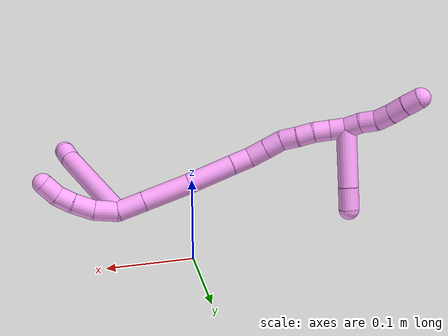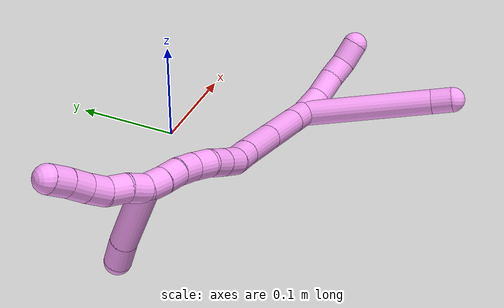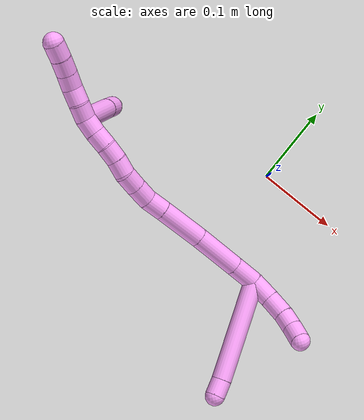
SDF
<sdf version="1.7">
 <world name="default">
  <model name="4">
   <static>0</static>
   <link name="4">
    <collision name="collision-cylinder-e_1_2_8">
     <pose>-0.028159 -0.034059 -0.046978 2.51429 -0.451811 -1.2329</pose>
     <geometry><cylinder><radius>0.0125</radius><length>0.128994</length></cylinder></geometry>
     <surface>
      <friction><ode><mu>1.16</mu><mu2>1.16</mu2><slip1>0</slip1><slip2>0</slip2></ode></friction>
      <contact><ode><kp>1e+06</kp><kd>1</kd><max_vel>0</max_vel><min_depth>0.001</min_depth></ode></contact>
     </surface>
    </collision>
    <visual name="visual-cylinder-e_1_2_8">
     <pose>-0.028159 -0.034059 -0.046978 2.51429 -0.451811 -1.2329</pose>
     <geometry><cylinder><radius>0.0125</radius><length>0.128994</length></cylinder></geometry>
     <material><ambient>1 0.65098 0.996078 1</ambient></material>
    </visual>
    <collision name="collision-cylinder-e_2_8_6">
     <pose>-0.061371 -0.074171 -0.100894 2.4242 -0.501884 -1.19946</pose>
     <geometry><cylinder><radius>0.0125</radius><length>0.021006</length></cylinder></geometry>
     <surface>
      <friction><ode><mu>1.16</mu><mu2>1.16</mu2><slip1>0</slip1><slip2>0</slip2></ode></friction>
      <contact><ode><kp>1e+06</kp><kd>1</kd><max_vel>0</max_vel><min_depth>0.001</min_depth></ode></contact>
     </surface>
    </collision>
    <visual name="visual-cylinder-e_2_8_6">
     <pose>-0.061371 -0.074171 -0.100894 2.4242 -0.501884 -1.19946</pose>
     <geometry><cylinder><radius>0.0125</radius><length>0.021006</length></cylinder></geometry>
     <material><ambient>1 0.65098 0.996078 1</ambient></material>
    </visual>
    <collision name="collision-cylinder-e_1_2_9">
     <pose>0.007852 -0.003247 -0.011945 2.8762 0.565316 2.27999</pose>
     <geometry><cylinder><radius>0.0125</radius><length>0.029318</length></cylinder></geometry>
     <surface>
      <friction><ode><mu>1.16</mu><mu2>1.16</mu2><slip1>0</slip1><slip2>0</slip2></ode></friction>
      <contact><ode><kp>1e+06</kp><kd>1</kd><max_vel>0</max_vel><min_depth>0.001</min_depth></ode></contact>
     </surface>
    </collision>
    <visual name="visual-cylinder-e_1_2_9">
     <pose>0.007852 -0.003247 -0.011945 2.8762 0.565316 2.27999</pose>
     <geometry><cylinder><radius>0.0125</radius><length>0.029318</length></cylinder></geometry>
     <material><ambient>1 0.65098 0.996078 1</ambient></material>
    </visual>
    <collision name="collision-cylinder-e_2_9_10">
     <pose>0.023029 -0.012934 -0.033235 2.53817 0.573076 1.51612</pose>
     <geometry><cylinder><radius>0.0125</radius><length>0.027015</length></cylinder></geometry>
     <surface>
      <friction><ode><mu>1.16</mu><mu2>1.16</mu2><slip1>0</slip1><slip2>0</slip2></ode></friction>
      <contact><ode><kp>1e+06</kp><kd>1</kd><max_vel>0</max_vel><min_depth>0.001</min_depth></ode></contact>
     </surface>
    </collision>
    <visual name="visual-cylinder-e_2_9_10">
     <pose>0.023029 -0.012934 -0.033235 2.53817 0.573076 1.51612</pose>
     <geometry><cylinder><radius>0.0125</radius><length>0.027015</length></cylinder></geometry>
     <material><ambient>1 0.65098 0.996078 1</ambient></material>
    </visual>
    <collision name="collision-cylinder-e_3_10_11">
     <pose>0.034805 -0.025261 -0.049753 2.45434 0.447328 1.13253</pose>
     <geometry><cylinder><radius>0.0125</radius><length>0.020584</length></cylinder></geometry>
     <surface>
      <friction><ode><mu>1.16</mu><mu2>1.16</mu2><slip1>0</slip1><slip2>0</slip2></ode></friction>
      <contact><ode><kp>1e+06</kp><kd>1</kd><max_vel>0</max_vel><min_depth>0.001</min_depth></ode></contact>
     </surface>
    </collision>
    <visual name="visual-cylinder-e_3_10_11">
     <pose>0.034805 -0.025261 -0.049753 2.45434 0.447328 1.13253</pose>
     <geometry><cylinder><radius>0.0125</radius><length>0.020584</length></cylinder></geometry>
     <material><ambient>1 0.65098 0.996078 1</ambient></material>
    </visual>
    <collision name="collision-cylinder-e_4_11_5">
     <pose>0.043818 -0.040141 -0.062541 2.129 0.406278 0.711333</pose>
     <geometry><cylinder><radius>0.0125</radius><length>0.023084</length></cylinder></geometry>
     <surface>
      <friction><ode><mu>1.16</mu><mu2>1.16</mu2><slip1>0</slip1><slip2>0</slip2></ode></friction>
      <contact><ode><kp>1e+06</kp><kd>1</kd><max_vel>0</max_vel><min_depth>0.001</min_depth></ode></contact>
     </surface>
    </collision>
    <visual name="visual-cylinder-e_4_11_5">
     <pose>0.043818 -0.040141 -0.062541 2.129 0.406278 0.711333</pose>
     <geometry><cylinder><radius>0.0125</radius><length>0.023084</length></cylinder></geometry>
     <material><ambient>1 0.65098 0.996078 1</ambient></material>
    </visual>
    <collision name="collision-cylinder-e_1_2_12">
     <pose>-0.008548 -0.003449 0.01408 0.240191 -0.53276 -0.065833</pose>
     <geometry><cylinder><radius>0.0125</radius><length>0.033658</length></cylinder></geometry>
     <surface>
      <friction><ode><mu>1.16</mu><mu2>1.16</mu2><slip1>0</slip1><slip2>0</slip2></ode></friction>
      <contact><ode><kp>1e+06</kp><kd>1</kd><max_vel>0</max_vel><min_depth>0.001</min_depth></ode></contact>
     </surface>
    </collision>
    <visual name="visual-cylinder-e_1_2_12">
     <pose>-0.008548 -0.003449 0.01408 0.240191 -0.53276 -0.065833</pose>
     <geometry><cylinder><radius>0.0125</radius><length>0.033658</length></cylinder></geometry>
     <material><ambient>1 0.65098 0.996078 1</ambient></material>
    </visual>
    <collision name="collision-cylinder-e_2_12_13">
     <pose>-0.032213 -0.012956 0.052853 0.240624 -0.536449 -0.066431</pose>
     <geometry><cylinder><radius>0.0125</radius><length>0.05916</length></cylinder></geometry>
     <surface>
      <friction><ode><mu>1.16</mu><mu2>1.16</mu2><slip1>0</slip1><slip2>0</slip2></ode></friction>
      <contact><ode><kp>1e+06</kp><kd>1</kd><max_vel>0</max_vel><min_depth>0.001</min_depth></ode></contact>
     </surface>
    </collision>
    <visual name="visual-cylinder-e_2_12_13">
     <pose>-0.032213 -0.012956 0.052853 0.240624 -0.536449 -0.066431</pose>
     <geometry><cylinder><radius>0.0125</radius><length>0.05916</length></cylinder></geometry>
     <material><ambient>1 0.65098 0.996078 1</ambient></material>
    </visual>
    <collision name="collision-cylinder-e_3_13_14">
     <pose>-0.062334 -0.02598 0.101193 0.286446 -0.546726 -0.080824</pose>
     <geometry><cylinder><radius>0.0125</radius><length>0.057716</length></cylinder></geometry>
     <surface>
      <friction><ode><mu>1.16</mu><mu2>1.16</mu2><slip1>0</slip1><slip2>0</slip2></ode></friction>
      <contact><ode><kp>1e+06</kp><kd>1</kd><max_vel>0</max_vel><min_depth>0.001</min_depth></ode></contact>
     </surface>
    </collision>
    <visual name="visual-cylinder-e_3_13_14">
     <pose>-0.062334 -0.02598 0.101193 0.286446 -0.546726 -0.080824</pose>
     <geometry><cylinder><radius>0.0125</radius><length>0.057716</length></cylinder></geometry>
     <material><ambient>1 0.65098 0.996078 1</ambient></material>
    </visual>
    <collision name="collision-cylinder-e_4_14_15">
     <pose>-0.083843 -0.035685 0.13452 0.275769 -0.573983 -0.081864</pose>
     <geometry><cylinder><radius>0.0125</radius><length>0.023961</length></cylinder></geometry>
     <surface>
      <friction><ode><mu>1.16</mu><mu2>1.16</mu2><slip1>0</slip1><slip2>0</slip2></ode></friction>
      <contact><ode><kp>1e+06</kp><kd>1</kd><max_vel>0</max_vel><min_depth>0.001</min_depth></ode></contact>
     </surface>
    </collision>
    <visual name="visual-cylinder-e_4_14_15">
     <pose>-0.083843 -0.035685 0.13452 0.275769 -0.573983 -0.081864</pose>
     <geometry><cylinder><radius>0.0125</radius><length>0.023961</length></cylinder></geometry>
     <material><ambient>1 0.65098 0.996078 1</ambient></material>
    </visual>
    <collision name="collision-cylinder-e_5_15_16">
     <pose>-0.09392 -0.042205 0.15464 0.34753 -0.311238 -0.055065</pose>
     <geometry><cylinder><radius>0.0125</radius><length>0.023326</length></cylinder></geometry>
     <surface>
      <friction><ode><mu>1.16</mu><mu2>1.16</mu2><slip1>0</slip1><slip2>0</slip2></ode></friction>
      <contact><ode><kp>1e+06</kp><kd>1</kd><max_vel>0</max_vel><min_depth>0.001</min_depth></ode></contact>
     </surface>
    </collision>
    <visual name="visual-cylinder-e_5_15_16">
     <pose>-0.09392 -0.042205 0.15464 0.34753 -0.311238 -0.055065</pose>
     <geometry><cylinder><radius>0.0125</radius><length>0.023326</length></cylinder></geometry>
     <material><ambient>1 0.65098 0.996078 1</ambient></material>
    </visual>
    <collision name="collision-cylinder-e_6_16_17">
     <pose>-0.100495 -0.049712 0.175003 0.359083 -0.276091 -0.050419</pose>
     <geometry><cylinder><radius>0.0125</radius><length>0.022035</length></cylinder></geometry>
     <surface>
      <friction><ode><mu>1.16</mu><mu2>1.16</mu2><slip1>0</slip1><slip2>0</slip2></ode></friction>
      <contact><ode><kp>1e+06</kp><kd>1</kd><max_vel>0</max_vel><min_depth>0.001</min_depth></ode></contact>
     </surface>
    </collision>
    <visual name="visual-cylinder-e_6_16_17">
     <pose>-0.100495 -0.049712 0.175003 0.359083 -0.276091 -0.050419</pose>
     <geometry><cylinder><radius>0.0125</radius><length>0.022035</length></cylinder></geometry>
     <material><ambient>1 0.65098 0.996078 1</ambient></material>
    </visual>
    <collision name="collision-cylinder-e_7_17_18">
     <pose>-0.105581 -0.054102 0.194734 0.067672 -0.208778 -0.007093</pose>
     <geometry><cylinder><radius>0.0125</radius><length>0.020095</length></cylinder></geometry>
     <surface>
      <friction><ode><mu>1.16</mu><mu2>1.16</mu2><slip1>0</slip1><slip2>0</slip2></ode></friction>
      <contact><ode><kp>1e+06</kp><kd>1</kd><max_vel>0</max_vel><min_depth>0.001</min_depth></ode></contact>
     </surface>
    </collision>
    <visual name="visual-cylinder-e_7_17_18">
     <pose>-0.105581 -0.054102 0.194734 0.067672 -0.208778 -0.007093</pose>
     <geometry><cylinder><radius>0.0125</radius><length>0.020095</length></cylinder></geometry>
     <material><ambient>1 0.65098 0.996078 1</ambient></material>
    </visual>
    <collision name="collision-cylinder-e_8_18_19">
     <pose>-0.110869 -0.055872 0.213963 0.116836 -0.325874 -0.019228</pose>
     <geometry><cylinder><radius>0.0125</radius><length>0.020027</length></cylinder></geometry>
     <surface>
      <friction><ode><mu>1.16</mu><mu2>1.16</mu2><slip1>0</slip1><slip2>0</slip2></ode></friction>
      <contact><ode><kp>1e+06</kp><kd>1</kd><max_vel>0</max_vel><min_depth>0.001</min_depth></ode></contact>
     </surface>
    </collision>
    <visual name="visual-cylinder-e_8_18_19">
     <pose>-0.110869 -0.055872 0.213963 0.116836 -0.325874 -0.019228</pose>
     <geometry><cylinder><radius>0.0125</radius><length>0.020027</length></cylinder></geometry>
     <material><ambient>1 0.65098 0.996078 1</ambient></material>
    </visual>
    <collision name="collision-cylinder-e_9_19_20">
     <pose>-0.118205 -0.056854 0.232494 -0.013577 -0.425644 0.002934</pose>
     <geometry><cylinder><radius>0.0125</radius><length>0.020005</length></cylinder></geometry>
     <surface>
      <friction><ode><mu>1.16</mu><mu2>1.16</mu2><slip1>0</slip1><slip2>0</slip2></ode></friction>
      <contact><ode><kp>1e+06</kp><kd>1</kd><max_vel>0</max_vel><min_depth>0.001</min_depth></ode></contact>
     </surface>
    </collision>
    <visual name="visual-cylinder-e_9_19_20">
     <pose>-0.118205 -0.056854 0.232494 -0.013577 -0.425644 0.002934</pose>
     <geometry><cylinder><radius>0.0125</radius><length>0.020005</length></cylinder></geometry>
     <material><ambient>1 0.65098 0.996078 1</ambient></material>
    </visual>
    <collision name="collision-cylinder-e_10_20_1">
     <pose>-0.125634 -0.056489 0.251049 -0.025601 -0.335895 0.004341</pose>
     <geometry><cylinder><radius>0.0125</radius><length>0.020016</length></cylinder></geometry>
     <surface>
      <friction><ode><mu>1.16</mu><mu2>1.16</mu2><slip1>0</slip1><slip2>0</slip2></ode></friction>
      <contact><ode><kp>1e+06</kp><kd>1</kd><max_vel>0</max_vel><min_depth>0.001</min_depth></ode></contact>
     </surface>
    </collision>
    <visual name="visual-cylinder-e_10_20_1">
     <pose>-0.125634 -0.056489 0.251049 -0.025601 -0.335895 0.004341</pose>
     <geometry><cylinder><radius>0.0125</radius><length>0.020016</length></cylinder></geometry>
     <material><ambient>1 0.65098 0.996078 1</ambient></material>
    </visual>
    <collision name="collision-cylinder-e_1_1_21">
     <pose>-0.129312 -0.058073 0.270319 0.183778 -0.037942 -0.003497</pose>
     <geometry><cylinder><radius>0.0125</radius><length>0.02</length></cylinder></geometry>
     <surface>
      <friction><ode><mu>1.16</mu><mu2>1.16</mu2><slip1>0</slip1><slip2>0</slip2></ode></friction>
      <contact><ode><kp>1e+06</kp><kd>1</kd><max_vel>0</max_vel><min_depth>0.001</min_depth></ode></contact>
     </surface>
    </collision>
    <visual name="visual-cylinder-e_1_1_21">
     <pose>-0.129312 -0.058073 0.270319 0.183778 -0.037942 -0.003497</pose>
     <geometry><cylinder><radius>0.0125</radius><length>0.02</length></cylinder></geometry>
     <material><ambient>1 0.65098 0.996078 1</ambient></material>
    </visual>
    <collision name="collision-cylinder-e_2_21_22">
     <pose>-0.130818 -0.059888 0.29008 -0.001152 -0.112974 6.5e-05</pose>
     <geometry><cylinder><radius>0.0125</radius><length>0.02</length></cylinder></geometry>
     <surface>
      <friction><ode><mu>1.16</mu><mu2>1.16</mu2><slip1>0</slip1><slip2>0</slip2></ode></friction>
      <contact><ode><kp>1e+06</kp><kd>1</kd><max_vel>0</max_vel><min_depth>0.001</min_depth></ode></contact>
     </surface>
    </collision>
    <visual name="visual-cylinder-e_2_21_22">
     <pose>-0.130818 -0.059888 0.29008 -0.001152 -0.112974 6.5e-05</pose>
     <geometry><cylinder><radius>0.0125</radius><length>0.02</length></cylinder></geometry>
     <material><ambient>1 0.65098 0.996078 1</ambient></material>
    </visual>
    <collision name="collision-cylinder-e_3_22_23">
     <pose>-0.131432 -0.062638 0.309613 0.280168 0.051414 0.007251</pose>
     <geometry><cylinder><radius>0.0125</radius><length>0.02</length></cylinder></geometry>
     <surface>
      <friction><ode><mu>1.16</mu><mu2>1.16</mu2><slip1>0</slip1><slip2>0</slip2></ode></friction>
      <contact><ode><kp>1e+06</kp><kd>1</kd><max_vel>0</max_vel><min_depth>0.001</min_depth></ode></contact>
     </surface>
    </collision>
    <visual name="visual-cylinder-e_3_22_23">
     <pose>-0.131432 -0.062638 0.309613 0.280168 0.051414 0.007251</pose>
     <geometry><cylinder><radius>0.0125</radius><length>0.02</length></cylinder></geometry>
     <material><ambient>1 0.65098 0.996078 1</ambient></material>
    </visual>
    <collision name="collision-cylinder-e_4_23_24">
     <pose>-0.130379 -0.068936 0.328549 0.362031 0.053897 0.009866</pose>
     <geometry><cylinder><radius>0.0125</radius><length>0.02</length></cylinder></geometry>
     <surface>
      <friction><ode><mu>1.16</mu><mu2>1.16</mu2><slip1>0</slip1><slip2>0</slip2></ode></friction>
      <contact><ode><kp>1e+06</kp><kd>1</kd><max_vel>0</max_vel><min_depth>0.001</min_depth></ode></contact>
     </surface>
    </collision>
    <visual name="visual-cylinder-e_4_23_24">
     <pose>-0.130379 -0.068936 0.328549 0.362031 0.053897 0.009866</pose>
     <geometry><cylinder><radius>0.0125</radius><length>0.02</length></cylinder></geometry>
     <material><ambient>1 0.65098 0.996078 1</ambient></material>
    </visual>
    <collision name="collision-cylinder-e_5_24_4">
     <pose>-0.129996 -0.075614 0.34738 0.319552 -0.015606 -0.002515</pose>
     <geometry><cylinder><radius>0.0125</radius><length>0.02</length></cylinder></geometry>
     <surface>
      <friction><ode><mu>1.16</mu><mu2>1.16</mu2><slip1>0</slip1><slip2>0</slip2></ode></friction>
      <contact><ode><kp>1e+06</kp><kd>1</kd><max_vel>0</max_vel><min_depth>0.001</min_depth></ode></contact>
     </surface>
    </collision>
    <visual name="visual-cylinder-e_5_24_4">
     <pose>-0.129996 -0.075614 0.34738 0.319552 -0.015606 -0.002515</pose>
     <geometry><cylinder><radius>0.0125</radius><length>0.02</length></cylinder></geometry>
     <material><ambient>1 0.65098 0.996078 1</ambient></material>
    </visual>
    <collision name="collision-cylinder-e_1_1_25">
     <pose>-0.127091 -0.020414 0.256769 -1.67437 0.051061 -0.056641</pose>
     <geometry><cylinder><radius>0.0125</radius><length>0.072146</length></cylinder></geometry>
     <surface>
      <friction><ode><mu>1.16</mu><mu2>1.16</mu2><slip1>0</slip1><slip2>0</slip2></ode></friction>
      <contact><ode><kp>1e+06</kp><kd>1</kd><max_vel>0</max_vel><min_depth>0.001</min_depth></ode></contact>
     </surface>
    </collision>
    <visual name="visual-cylinder-e_1_1_25">
     <pose>-0.127091 -0.020414 0.256769 -1.67437 0.051061 -0.056641</pose>
     <geometry><cylinder><radius>0.0125</radius><length>0.072146</length></cylinder></geometry>
     <material><ambient>1 0.65098 0.996078 1</ambient></material>
    </visual>
    <collision name="collision-cylinder-e_2_25_3">
     <pose>-0.125455 0.029222 0.251199 -1.70373 -0.014746 0.016849</pose>
     <geometry><cylinder><radius>0.0125</radius><length>0.027854</length></cylinder></geometry>
     <surface>
      <friction><ode><mu>1.16</mu><mu2>1.16</mu2><slip1>0</slip1><slip2>0</slip2></ode></friction>
      <contact><ode><kp>1e+06</kp><kd>1</kd><max_vel>0</max_vel><min_depth>0.001</min_depth></ode></contact>
     </surface>
    </collision>
    <visual name="visual-cylinder-e_2_25_3">
     <pose>-0.125455 0.029222 0.251199 -1.70373 -0.014746 0.016849</pose>
     <geometry><cylinder><radius>0.0125</radius><length>0.027854</length></cylinder></geometry>
     <material><ambient>1 0.65098 0.996078 1</ambient></material>
    </visual>
    <collision name="collision-sphere-3">
     <pose>-0.125661 0.043024 0.249353 0 -0 0</pose>
     <geometry><sphere><radius>0.0125</radius></sphere></geometry>
     <surface>
      <friction><ode><mu>1.16</mu><mu2>1.16</mu2><slip1>0</slip1><slip2>0</slip2></ode></friction>
      <contact><ode><kp>1e+06</kp><kd>1</kd><max_vel>0</max_vel><min_depth>0.001</min_depth></ode></contact>
     </surface>
    </collision>
    <visual name="visual-sphere-3">
     <pose>-0.125661 0.043024 0.249353 0 -0 0</pose>
     <geometry><sphere><radius>0.0125</radius></sphere></geometry>
     <material><ambient>1 0.65098 0.996078 1</ambient></material>
    </visual>
    <collision name="collision-sphere-25">
     <pose>-0.12525 0.015419 0.253045 0 -0 0</pose>
     <geometry><sphere><radius>0.0125</radius></sphere></geometry>
     <surface>
      <friction><ode><mu>1.16</mu><mu2>1.16</mu2><slip1>0</slip1><slip2>0</slip2></ode></friction>
      <contact><ode><kp>1e+06</kp><kd>1</kd><max_vel>0</max_vel><min_depth>0.001</min_depth></ode></contact>
     </surface>
    </collision>
    <visual name="visual-sphere-25">
     <pose>-0.12525 0.015419 0.253045 0 -0 0</pose>
     <geometry><sphere><radius>0.0125</radius></sphere></geometry>
     <material><ambient>1 0.65098 0.996078 1</ambient></material>
    </visual>
    <collision name="collision-sphere-4">
     <pose>-0.130152 -0.078755 0.356872 0 -0 0</pose>
     <geometry><sphere><radius>0.0125</radius></sphere></geometry>
     <surface>
      <friction><ode><mu>1.16</mu><mu2>1.16</mu2><slip1>0</slip1><slip2>0</slip2></ode></friction>
      <contact><ode><kp>1e+06</kp><kd>1</kd><max_vel>0</max_vel><min_depth>0.001</min_depth></ode></contact>
     </surface>
    </collision>
    <visual name="visual-sphere-4">
     <pose>-0.130152 -0.078755 0.356872 0 -0 0</pose>
     <geometry><sphere><radius>0.0125</radius></sphere></geometry>
     <material><ambient>1 0.65098 0.996078 1</ambient></material>
    </visual>
    <collision name="collision-sphere-24">
     <pose>-0.12984 -0.072473 0.337887 0 -0 0</pose>
     <geometry><sphere><radius>0.0125</radius></sphere></geometry>
     <surface>
      <friction><ode><mu>1.16</mu><mu2>1.16</mu2><slip1>0</slip1><slip2>0</slip2></ode></friction>
      <contact><ode><kp>1e+06</kp><kd>1</kd><max_vel>0</max_vel><min_depth>0.001</min_depth></ode></contact>
     </surface>
    </collision>
    <visual name="visual-sphere-24">
     <pose>-0.12984 -0.072473 0.337887 0 -0 0</pose>
     <geometry><sphere><radius>0.0125</radius></sphere></geometry>
     <material><ambient>1 0.65098 0.996078 1</ambient></material>
    </visual>
    <collision name="collision-sphere-23">
     <pose>-0.130918 -0.065399 0.319211 0 -0 0</pose>
     <geometry><sphere><radius>0.0125</radius></sphere></geometry>
     <surface>
      <friction><ode><mu>1.16</mu><mu2>1.16</mu2><slip1>0</slip1><slip2>0</slip2></ode></friction>
      <contact><ode><kp>1e+06</kp><kd>1</kd><max_vel>0</max_vel><min_depth>0.001</min_depth></ode></contact>
     </surface>
    </collision>
    <visual name="visual-sphere-23">
     <pose>-0.130918 -0.065399 0.319211 0 -0 0</pose>
     <geometry><sphere><radius>0.0125</radius></sphere></geometry>
     <material><ambient>1 0.65098 0.996078 1</ambient></material>
    </visual>
    <collision name="collision-sphere-22">
     <pose>-0.131946 -0.059876 0.300016 0 -0 0</pose>
     <geometry><sphere><radius>0.0125</radius></sphere></geometry>
     <surface>
      <friction><ode><mu>1.16</mu><mu2>1.16</mu2><slip1>0</slip1><slip2>0</slip2></ode></friction>
      <contact><ode><kp>1e+06</kp><kd>1</kd><max_vel>0</max_vel><min_depth>0.001</min_depth></ode></contact>
     </surface>
    </collision>
    <visual name="visual-sphere-22">
     <pose>-0.131946 -0.059876 0.300016 0 -0 0</pose>
     <geometry><sphere><radius>0.0125</radius></sphere></geometry>
     <material><ambient>1 0.65098 0.996078 1</ambient></material>
    </visual>
    <collision name="collision-sphere-21">
     <pose>-0.129691 -0.059899 0.280143 0 -0 0</pose>
     <geometry><sphere><radius>0.0125</radius></sphere></geometry>
     <surface>
      <friction><ode><mu>1.16</mu><mu2>1.16</mu2><slip1>0</slip1><slip2>0</slip2></ode></friction>
      <contact><ode><kp>1e+06</kp><kd>1</kd><max_vel>0</max_vel><min_depth>0.001</min_depth></ode></contact>
     </surface>
    </collision>
    <visual name="visual-sphere-21">
     <pose>-0.129691 -0.059899 0.280143 0 -0 0</pose>
     <geometry><sphere><radius>0.0125</radius></sphere></geometry>
     <material><ambient>1 0.65098 0.996078 1</ambient></material>
    </visual>
    <collision name="collision-sphere-1">
     <pose>-0.128932 -0.056247 0.260494 0 -0 0</pose>
     <geometry><sphere><radius>0.0125</radius></sphere></geometry>
     <surface>
      <friction><ode><mu>1.16</mu><mu2>1.16</mu2><slip1>0</slip1><slip2>0</slip2></ode></friction>
      <contact><ode><kp>1e+06</kp><kd>1</kd><max_vel>0</max_vel><min_depth>0.001</min_depth></ode></contact>
     </surface>
    </collision>
    <visual name="visual-sphere-1">
     <pose>-0.128932 -0.056247 0.260494 0 -0 0</pose>
     <geometry><sphere><radius>0.0125</radius></sphere></geometry>
     <material><ambient>1 0.65098 0.996078 1</ambient></material>
    </visual>
    <collision name="collision-sphere-11">
     <pose>0.039257 -0.031148 -0.056925 0 -0 0</pose>
     <geometry><sphere><radius>0.0125</radius></sphere></geometry>
     <surface>
      <friction><ode><mu>1.16</mu><mu2>1.16</mu2><slip1>0</slip1><slip2>0</slip2></ode></friction>
      <contact><ode><kp>1e+06</kp><kd>1</kd><max_vel>0</max_vel><min_depth>0.001</min_depth></ode></contact>
     </surface>
    </collision>
    <visual name="visual-sphere-11">
     <pose>0.039257 -0.031148 -0.056925 0 -0 0</pose>
     <geometry><sphere><radius>0.0125</radius></sphere></geometry>
     <material><ambient>1 0.65098 0.996078 1</ambient></material>
    </visual>
    <collision name="collision-sphere-10">
     <pose>0.030353 -0.019374 -0.04258 0 -0 0</pose>
     <geometry><sphere><radius>0.0125</radius></sphere></geometry>
     <surface>
      <friction><ode><mu>1.16</mu><mu2>1.16</mu2><slip1>0</slip1><slip2>0</slip2></ode></friction>
      <contact><ode><kp>1e+06</kp><kd>1</kd><max_vel>0</max_vel><min_depth>0.001</min_depth></ode></contact>
     </surface>
    </collision>
    <visual name="visual-sphere-10">
     <pose>0.030353 -0.019374 -0.04258 0 -0 0</pose>
     <geometry><sphere><radius>0.0125</radius></sphere></geometry>
     <material><ambient>1 0.65098 0.996078 1</ambient></material>
    </visual>
    <collision name="collision-sphere-6">
     <pose>-0.066424 -0.080224 -0.107833 0 -0 0</pose>
     <geometry><sphere><radius>0.0125</radius></sphere></geometry>
     <surface>
      <friction><ode><mu>1.16</mu><mu2>1.16</mu2><slip1>0</slip1><slip2>0</slip2></ode></friction>
      <contact><ode><kp>1e+06</kp><kd>1</kd><max_vel>0</max_vel><min_depth>0.001</min_depth></ode></contact>
     </surface>
    </collision>
    <visual name="visual-sphere-6">
     <pose>-0.066424 -0.080224 -0.107833 0 -0 0</pose>
     <geometry><sphere><radius>0.0125</radius></sphere></geometry>
     <material><ambient>1 0.65098 0.996078 1</ambient></material>
    </visual>
    <collision name="collision-sphere-9">
     <pose>0.015705 -0.006493 -0.02389 0 -0 0</pose>
     <geometry><sphere><radius>0.0125</radius></sphere></geometry>
     <surface>
      <friction><ode><mu>1.16</mu><mu2>1.16</mu2><slip1>0</slip1><slip2>0</slip2></ode></friction>
      <contact><ode><kp>1e+06</kp><kd>1</kd><max_vel>0</max_vel><min_depth>0.001</min_depth></ode></contact>
     </surface>
    </collision>
    <visual name="visual-sphere-9">
     <pose>0.015705 -0.006493 -0.02389 0 -0 0</pose>
     <geometry><sphere><radius>0.0125</radius></sphere></geometry>
     <material><ambient>1 0.65098 0.996078 1</ambient></material>
    </visual>
    <collision name="collision-sphere-2">
     <geometry><sphere><radius>0.0125</radius></sphere></geometry>
     <surface>
      <friction><ode><mu>1.16</mu><mu2>1.16</mu2><slip1>0</slip1><slip2>0</slip2></ode></friction>
      <contact><ode><kp>1e+06</kp><kd>1</kd><max_vel>0</max_vel><min_depth>0.001</min_depth></ode></contact>
     </surface>
    </collision>
    <visual name="visual-sphere-2">
     <geometry><sphere><radius>0.0125</radius></sphere></geometry>
     <material><ambient>1 0.65098 0.996078 1</ambient></material>
    </visual>
    <collision name="collision-sphere-19">
     <pose>-0.114074 -0.056978 0.223385 0 -0 0</pose>
     <geometry><sphere><radius>0.0125</radius></sphere></geometry>
     <surface>
      <friction><ode><mu>1.16</mu><mu2>1.16</mu2><slip1>0</slip1><slip2>0</slip2></ode></friction>
      <contact><ode><kp>1e+06</kp><kd>1</kd><max_vel>0</max_vel><min_depth>0.001</min_depth></ode></contact>
     </surface>
    </collision>
    <visual name="visual-sphere-19">
     <pose>-0.114074 -0.056978 0.223385 0 -0 0</pose>
     <geometry><sphere><radius>0.0125</radius></sphere></geometry>
     <material><ambient>1 0.65098 0.996078 1</ambient></material>
    </visual>
    <collision name="collision-sphere-8">
     <pose>-0.056318 -0.068117 -0.093956 0 -0 0</pose>
     <geometry><sphere><radius>0.0125</radius></sphere></geometry>
     <surface>
      <friction><ode><mu>1.16</mu><mu2>1.16</mu2><slip1>0</slip1><slip2>0</slip2></ode></friction>
      <contact><ode><kp>1e+06</kp><kd>1</kd><max_vel>0</max_vel><min_depth>0.001</min_depth></ode></contact>
     </surface>
    </collision>
    <visual name="visual-sphere-8">
     <pose>-0.056318 -0.068117 -0.093956 0 -0 0</pose>
     <geometry><sphere><radius>0.0125</radius></sphere></geometry>
     <material><ambient>1 0.65098 0.996078 1</ambient></material>
    </visual>
    <collision name="collision-sphere-5">
     <pose>0.048379 -0.049134 -0.068157 0 -0 0</pose>
     <geometry><sphere><radius>0.0125</radius></sphere></geometry>
     <surface>
      <friction><ode><mu>1.16</mu><mu2>1.16</mu2><slip1>0</slip1><slip2>0</slip2></ode></friction>
      <contact><ode><kp>1e+06</kp><kd>1</kd><max_vel>0</max_vel><min_depth>0.001</min_depth></ode></contact>
     </surface>
    </collision>
    <visual name="visual-sphere-5">
     <pose>0.048379 -0.049134 -0.068157 0 -0 0</pose>
     <geometry><sphere><radius>0.0125</radius></sphere></geometry>
     <material><ambient>1 0.65098 0.996078 1</ambient></material>
    </visual>
    <collision name="collision-sphere-12">
     <pose>-0.017095 -0.006897 0.028161 0 -0 0</pose>
     <geometry><sphere><radius>0.0125</radius></sphere></geometry>
     <surface>
      <friction><ode><mu>1.16</mu><mu2>1.16</mu2><slip1>0</slip1><slip2>0</slip2></ode></friction>
      <contact><ode><kp>1e+06</kp><kd>1</kd><max_vel>0</max_vel><min_depth>0.001</min_depth></ode></contact>
     </surface>
    </collision>
    <visual name="visual-sphere-12">
     <pose>-0.017095 -0.006897 0.028161 0 -0 0</pose>
     <geometry><sphere><radius>0.0125</radius></sphere></geometry>
     <material><ambient>1 0.65098 0.996078 1</ambient></material>
    </visual>
    <collision name="collision-sphere-13">
     <pose>-0.047331 -0.019015 0.077546 0 -0 0</pose>
     <geometry><sphere><radius>0.0125</radius></sphere></geometry>
     <surface>
      <friction><ode><mu>1.16</mu><mu2>1.16</mu2><slip1>0</slip1><slip2>0</slip2></ode></friction>
      <contact><ode><kp>1e+06</kp><kd>1</kd><max_vel>0</max_vel><min_depth>0.001</min_depth></ode></contact>
     </surface>
    </collision>
    <visual name="visual-sphere-13">
     <pose>-0.047331 -0.019015 0.077546 0 -0 0</pose>
     <geometry><sphere><radius>0.0125</radius></sphere></geometry>
     <material><ambient>1 0.65098 0.996078 1</ambient></material>
    </visual>
    <collision name="collision-sphere-14">
     <pose>-0.077337 -0.032945 0.12484 0 -0 0</pose>
     <geometry><sphere><radius>0.0125</radius></sphere></geometry>
     <surface>
      <friction><ode><mu>1.16</mu><mu2>1.16</mu2><slip1>0</slip1><slip2>0</slip2></ode></friction>
      <contact><ode><kp>1e+06</kp><kd>1</kd><max_vel>0</max_vel><min_depth>0.001</min_depth></ode></contact>
     </surface>
    </collision>
    <visual name="visual-sphere-14">
     <pose>-0.077337 -0.032945 0.12484 0 -0 0</pose>
     <geometry><sphere><radius>0.0125</radius></sphere></geometry>
     <material><ambient>1 0.65098 0.996078 1</ambient></material>
    </visual>
    <collision name="collision-sphere-15">
     <pose>-0.090348 -0.038424 0.144201 0 -0 0</pose>
     <geometry><sphere><radius>0.0125</radius></sphere></geometry>
     <surface>
      <friction><ode><mu>1.16</mu><mu2>1.16</mu2><slip1>0</slip1><slip2>0</slip2></ode></friction>
      <contact><ode><kp>1e+06</kp><kd>1</kd><max_vel>0</max_vel><min_depth>0.001</min_depth></ode></contact>
     </surface>
    </collision>
    <visual name="visual-sphere-15">
     <pose>-0.090348 -0.038424 0.144201 0 -0 0</pose>
     <geometry><sphere><radius>0.0125</radius></sphere></geometry>
     <material><ambient>1 0.65098 0.996078 1</ambient></material>
    </visual>
    <collision name="collision-sphere-16">
     <pose>-0.097491 -0.045987 0.165079 0 -0 0</pose>
     <geometry><sphere><radius>0.0125</radius></sphere></geometry>
     <surface>
      <friction><ode><mu>1.16</mu><mu2>1.16</mu2><slip1>0</slip1><slip2>0</slip2></ode></friction>
      <contact><ode><kp>1e+06</kp><kd>1</kd><max_vel>0</max_vel><min_depth>0.001</min_depth></ode></contact>
     </surface>
    </collision>
    <visual name="visual-sphere-16">
     <pose>-0.097491 -0.045987 0.165079 0 -0 0</pose>
     <geometry><sphere><radius>0.0125</radius></sphere></geometry>
     <material><ambient>1 0.65098 0.996078 1</ambient></material>
    </visual>
    <collision name="collision-sphere-17">
     <pose>-0.103498 -0.053437 0.184928 0 -0 0</pose>
     <geometry><sphere><radius>0.0125</radius></sphere></geometry>
     <surface>
      <friction><ode><mu>1.16</mu><mu2>1.16</mu2><slip1>0</slip1><slip2>0</slip2></ode></friction>
      <contact><ode><kp>1e+06</kp><kd>1</kd><max_vel>0</max_vel><min_depth>0.001</min_depth></ode></contact>
     </surface>
    </collision>
    <visual name="visual-sphere-17">
     <pose>-0.103498 -0.053437 0.184928 0 -0 0</pose>
     <geometry><sphere><radius>0.0125</radius></sphere></geometry>
     <material><ambient>1 0.65098 0.996078 1</ambient></material>
    </visual>
    <collision name="collision-sphere-18">
     <pose>-0.107663 -0.054767 0.204541 0 -0 0</pose>
     <geometry><sphere><radius>0.0125</radius></sphere></geometry>
     <surface>
      <friction><ode><mu>1.16</mu><mu2>1.16</mu2><slip1>0</slip1><slip2>0</slip2></ode></friction>
      <contact><ode><kp>1e+06</kp><kd>1</kd><max_vel>0</max_vel><min_depth>0.001</min_depth></ode></contact>
     </surface>
    </collision>
    <visual name="visual-sphere-18">
     <pose>-0.107663 -0.054767 0.204541 0 -0 0</pose>
     <geometry><sphere><radius>0.0125</radius></sphere></geometry>
     <material><ambient>1 0.65098 0.996078 1</ambient></material>
    </visual>
    <collision name="collision-sphere-20">
     <pose>-0.122335 -0.056731 0.241603 0 -0 0</pose>
     <geometry><sphere><radius>0.0125</radius></sphere></geometry>
     <surface>
      <friction><ode><mu>1.16</mu><mu2>1.16</mu2><slip1>0</slip1><slip2>0</slip2></ode></friction>
      <contact><ode><kp>1e+06</kp><kd>1</kd><max_vel>0</max_vel><min_depth>0.001</min_depth></ode></contact>
     </surface>
    </collision>
    <visual name="visual-sphere-20">
     <pose>-0.122335 -0.056731 0.241603 0 -0 0</pose>
     <geometry><sphere><radius>0.0125</radius></sphere></geometry>
     <material><ambient>1 0.65098 0.996078 1</ambient></material>
    </visual>
    <inertial>
     <pose>-0.06596 -0.033061 0.110064 0 -0 0</pose>
     <mass>0.75</mass>
     <inertia>
      <ixx>-2e-05</ixx>
      <ixy>0</ixy>
      <ixz>0</ixz>
      <iyy>-0.000111</iyy>
      <iyz>0</iyz>
      <izz>0.000192</izz>
     </inertia>
    </inertial>
   </link>
   <pose>0.070408 -0.114079 0.012691 -1.26404 -0.263992 0.879311</pose>
  </model>
 </world>
</sdf>
